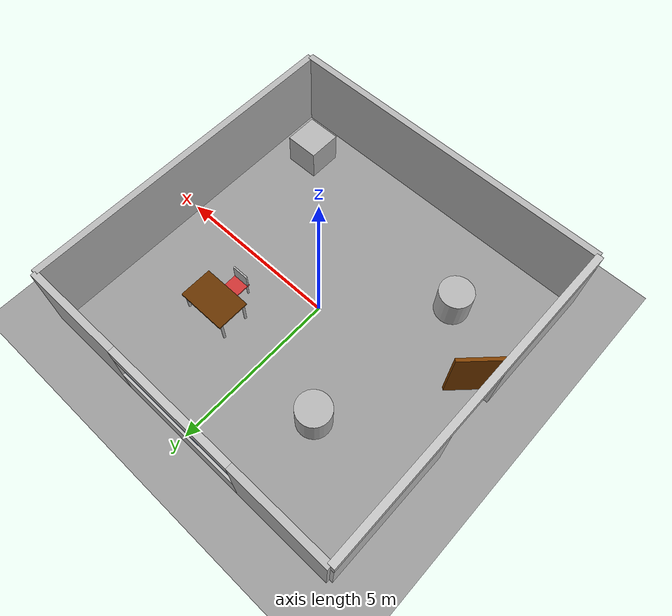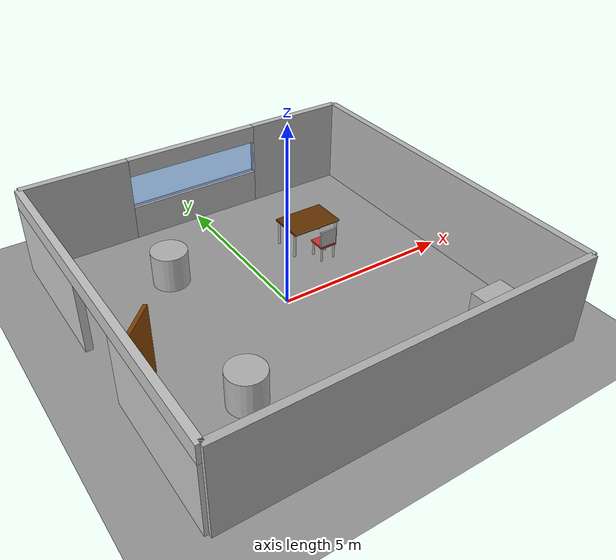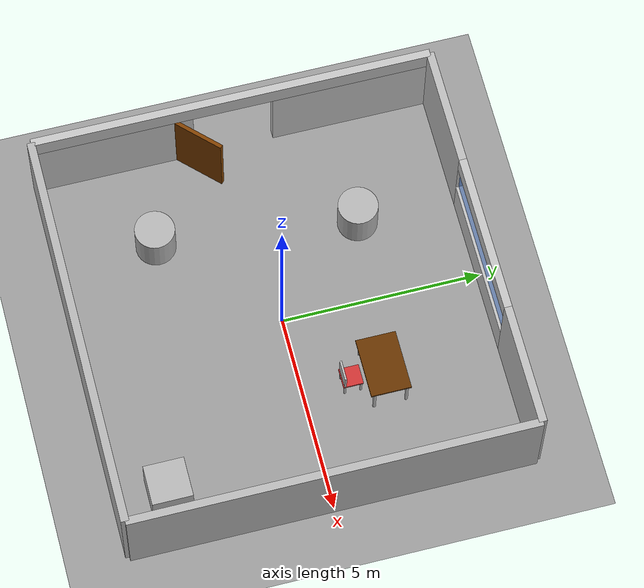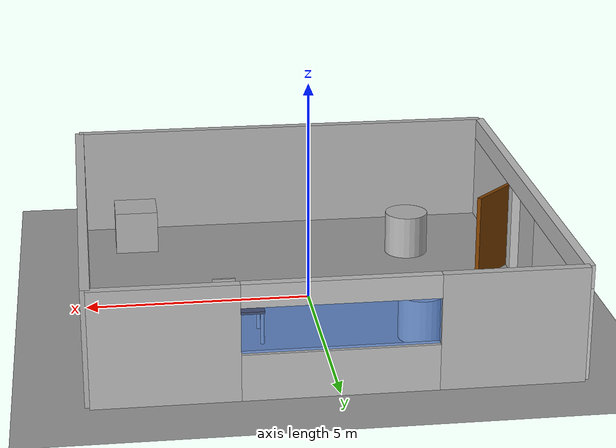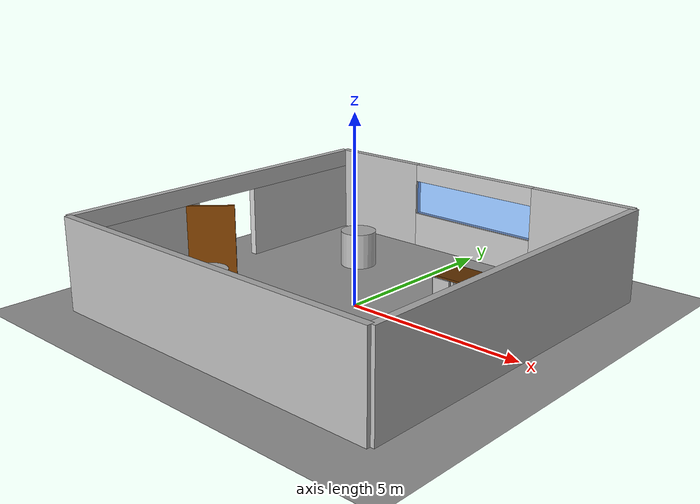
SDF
<sdf version="1.10">
 <world name="my_world">
  <model name="ground_plane">
   <static>true</static>
   <link name="link">
    <collision name="collision">
     <geometry><plane><normal>0 0 1</normal><size>100 100</size></plane></geometry>
    </collision>
    <visual name="visual">
     <geometry><plane><normal>0 0 1</normal><size>100 100</size></plane></geometry>
     <material>
      <ambient>0.600000024 0.600000024 0.600000024 1</ambient>
      <diffuse>0.600000024 0.600000024 0.600000024 1</diffuse>
     </material>
    </visual>
    <inertial>
     <mass>1</mass>
     <inertia><ixx>1</ixx><ixy>0</ixy><ixz>0</ixz><iyy>1</iyy><iyz>0</iyz><izz>1</izz></inertia>
    </inertial>
   </link>
  </model>
  <model name="wall_south">
   <static>true</static>
   <pose>0 -5 1.25 0 0 0</pose>
   <link name="link">
    <collision name="collision">
     <geometry><box><size>10 0.20000000000000001 2.5</size></box></geometry>
    </collision>
    <visual name="visual">
     <geometry><box><size>10 0.20000000000000001 2.5</size></box></geometry>
     <material>
      <ambient>0.699999988 0.699999988 0.699999988 1</ambient>
      <diffuse>0.699999988 0.699999988 0.699999988 1</diffuse>
     </material>
    </visual>
    <inertial>
     <mass>1</mass>
     <inertia><ixx>1</ixx><ixy>0</ixy><ixz>0</ixz><iyy>1</iyy><iyz>0</iyz><izz>1</izz></inertia>
    </inertial>
   </link>
  </model>
  <model name="wall_east">
   <static>true</static>
   <pose>5 0 1.25 0 0 0</pose>
   <link name="link">
    <collision name="collision">
     <geometry><box><size>0.20000000000000001 10 2.5</size></box></geometry>
    </collision>
    <visual name="visual">
     <geometry><box><size>0.20000000000000001 10 2.5</size></box></geometry>
     <material>
      <ambient>0.709999979 0.709999979 0.709999979 1</ambient>
      <diffuse>0.709999979 0.709999979 0.709999979 1</diffuse>
     </material>
    </visual>
    <inertial>
     <mass>1</mass>
     <inertia><ixx>1</ixx><ixy>0</ixy><ixz>0</ixz><iyy>1</iyy><iyz>0</iyz><izz>1</izz></inertia>
    </inertial>
   </link>
  </model>
  <model name="wall_north_window">
   <static>true</static>
   <link name="left_wall">
    <pose>-3.5 5 1.25 0 0 0</pose>
    <collision name="col"><geometry><box><size>3 0.20000000000000001 2.5</size></box></geometry></collision>
    <visual name="vis">
     <geometry><box><size>3 0.20000000000000001 2.5</size></box></geometry>
     <material>
      <ambient>0.720000029 0.720000029 0.720000029 1</ambient>
      <diffuse>0.720000029 0.720000029 0.720000029 1</diffuse>
     </material>
    </visual>
    <inertial>
     <mass>1</mass>
     <inertia><ixx>1</ixx><ixy>0</ixy><ixz>0</ixz><iyy>1</iyy><iyz>0</iyz><izz>1</izz></inertia>
    </inertial>
   </link>
   <link name="right_wall">
    <pose>3.5 5 1.25 0 0 0</pose>
    <collision name="col"><geometry><box><size>3 0.20000000000000001 2.5</size></box></geometry></collision>
    <visual name="vis">
     <geometry><box><size>3 0.20000000000000001 2.5</size></box></geometry>
     <material>
      <ambient>0.730000019 0.730000019 0.730000019 1</ambient>
      <diffuse>0.730000019 0.730000019 0.730000019 1</diffuse>
     </material>
    </visual>
    <inertial>
     <mass>1</mass>
     <inertia><ixx>1</ixx><ixy>0</ixy><ixz>0</ixz><iyy>1</iyy><iyz>0</iyz><izz>1</izz></inertia>
    </inertial>
   </link>
   <link name="bottom_wall">
    <pose>0 5 0.5 0 0 0</pose>
    <collision name="col"><geometry><box><size>4 0.20000000000000001 1</size></box></geometry></collision>
    <visual name="vis">
     <geometry><box><size>4 0.20000000000000001 1</size></box></geometry>
     <material>
      <ambient>0.74000001 0.74000001 0.74000001 1</ambient>
      <diffuse>0.74000001 0.74000001 0.74000001 1</diffuse>
     </material>
    </visual>
    <inertial>
     <mass>1</mass>
     <inertia><ixx>1</ixx><ixy>0</ixy><ixz>0</ixz><iyy>1</iyy><iyz>0</iyz><izz>1</izz></inertia>
    </inertial>
   </link>
   <link name="top_wall">
    <pose>0 5 2.25 0 0 0</pose>
    <collision name="col"><geometry><box><size>4 0.20000000000000001 0.5</size></box></geometry></collision>
    <visual name="vis">
     <geometry><box><size>4 0.20000000000000001 0.5</size></box></geometry>
     <material><ambient>0.75 0.75 0.75 1</ambient><diffuse>0.75 0.75 0.75 1</diffuse></material>
    </visual>
    <inertial>
     <mass>1</mass>
     <inertia><ixx>1</ixx><ixy>0</ixy><ixz>0</ixz><iyy>1</iyy><iyz>0</iyz><izz>1</izz></inertia>
    </inertial>
   </link>
   <link name="glass">
    <pose>0 5 1.5 0 0 0</pose>
    <visual name="vis">
     <geometry><box><size>4 0.050000000000000003 1</size></box></geometry>
     <material><ambient>0.200000003 0.5 1 0.5</ambient><diffuse>0.200000003 0.5 1 0.5</diffuse></material>
    </visual>
    <inertial>
     <mass>1</mass>
     <inertia><ixx>1</ixx><ixy>0</ixy><ixz>0</ixz><iyy>1</iyy><iyz>0</iyz><izz>1</izz></inertia>
    </inertial>
   </link>
  </model>
  <model name="wall_west_door">
   <static>true</static>
   <link name="top_wall">
    <pose>-5 0 2.25 0 0 0</pose>
    <collision name="col"><geometry><box><size>0.20000000000000001 10 0.5</size></box></geometry></collision>
    <visual name="vis">
     <geometry><box><size>0.20000000000000001 10 0.5</size></box></geometry>
     <material>
      <ambient>0.75999999 0.75999999 0.75999999 1</ambient>
      <diffuse>0.75999999 0.75999999 0.75999999 1</diffuse>
     </material>
    </visual>
    <inertial>
     <mass>1</mass>
     <inertia><ixx>1</ixx><ixy>0</ixy><ixz>0</ixz><iyy>1</iyy><iyz>0</iyz><izz>1</izz></inertia>
    </inertial>
   </link>
   <link name="left_wall">
    <pose>-5 -3 1 0 0 0</pose>
    <collision name="col"><geometry><box><size>0.20000000000000001 4 2</size></box></geometry></collision>
    <visual name="vis">
     <geometry><box><size>0.20000000000000001 4 2</size></box></geometry>
     <material>
      <ambient>0.769999981 0.769999981 0.769999981 1</ambient>
      <diffuse>0.769999981 0.769999981 0.769999981 1</diffuse>
     </material>
    </visual>
    <inertial>
     <mass>1</mass>
     <inertia><ixx>1</ixx><ixy>0</ixy><ixz>0</ixz><iyy>1</iyy><iyz>0</iyz><izz>1</izz></inertia>
    </inertial>
   </link>
   <link name="right_wall">
    <pose>-5 3 1 0 0 0</pose>
    <collision name="col"><geometry><box><size>0.20000000000000001 4 2</size></box></geometry></collision>
    <visual name="vis">
     <geometry><box><size>0.20000000000000001 4 2</size></box></geometry>
     <material>
      <ambient>0.779999971 0.779999971 0.779999971 1</ambient>
      <diffuse>0.779999971 0.779999971 0.779999971 1</diffuse>
     </material>
    </visual>
    <inertial>
     <mass>1</mass>
     <inertia><ixx>1</ixx><ixy>0</ixy><ixz>0</ixz><iyy>1</iyy><iyz>0</iyz><izz>1</izz></inertia>
    </inertial>
   </link>
   <link name="door">
    <pose>-4.5 -1 1 0 0 0.78500000000000036</pose>
    <collision name="col">
     <geometry><box><size>1.3999999999999999 0.10000000000000001 2</size></box></geometry>
    </collision>
    <visual name="vis">
     <geometry><box><size>1.3999999999999999 0.10000000000000001 2</size></box></geometry>
     <material><ambient>0.5 0.25 0 1</ambient><diffuse>0.5 0.25 0 1</diffuse></material>
    </visual>
    <inertial>
     <mass>1</mass>
     <inertia><ixx>1</ixx><ixy>0</ixy><ixz>0</ixz><iyy>1</iyy><iyz>0</iyz><izz>1</izz></inertia>
    </inertial>
   </link>
  </model>
  <model name="table">
   <static>true</static>
   <link name="table_top">
    <pose>2 2 0.75 0 0 0</pose>
    <collision name="col"><geometry><box><size>1.5 1 0.050000000000000003</size></box></geometry></collision>
    <visual name="vis">
     <geometry><box><size>1.5 1 0.050000000000000003</size></box></geometry>
     <material>
      <ambient>0.400000006 0.200000003 0 1</ambient>
      <diffuse>0.400000006 0.200000003 0 1</diffuse>
     </material>
    </visual>
    <inertial>
     <mass>1</mass>
     <inertia><ixx>1</ixx><ixy>0</ixy><ixz>0</ixz><iyy>1</iyy><iyz>0</iyz><izz>1</izz></inertia>
    </inertial>
   </link>
   <link name="leg1">
    <pose>1.3 1.6000000000000001 0.375 0 0 0</pose>
    <collision name="col">
     <geometry><cylinder><radius>0.040000000000000001</radius><length>0.75</length></cylinder></geometry>
    </collision>
    <visual name="vis">
     <geometry><cylinder><radius>0.040000000000000001</radius><length>0.75</length></cylinder></geometry>
    </visual>
    <inertial>
     <mass>1</mass>
     <inertia><ixx>1</ixx><ixy>0</ixy><ixz>0</ixz><iyy>1</iyy><iyz>0</iyz><izz>1</izz></inertia>
    </inertial>
   </link>
   <link name="leg2">
    <pose>2.7000000000000002 1.6000000000000001 0.375 0 0 0</pose>
    <collision name="col">
     <geometry><cylinder><radius>0.040000000000000001</radius><length>0.75</length></cylinder></geometry>
    </collision>
    <visual name="vis">
     <geometry><cylinder><radius>0.040000000000000001</radius><length>0.75</length></cylinder></geometry>
    </visual>
    <inertial>
     <mass>1</mass>
     <inertia><ixx>1</ixx><ixy>0</ixy><ixz>0</ixz><iyy>1</iyy><iyz>0</iyz><izz>1</izz></inertia>
    </inertial>
   </link>
   <link name="leg3">
    <pose>1.3 2.3999999999999999 0.375 0 0 0</pose>
    <collision name="col">
     <geometry><cylinder><radius>0.040000000000000001</radius><length>0.75</length></cylinder></geometry>
    </collision>
    <visual name="vis">
     <geometry><cylinder><radius>0.040000000000000001</radius><length>0.75</length></cylinder></geometry>
    </visual>
    <inertial>
     <mass>1</mass>
     <inertia><ixx>1</ixx><ixy>0</ixy><ixz>0</ixz><iyy>1</iyy><iyz>0</iyz><izz>1</izz></inertia>
    </inertial>
   </link>
   <link name="leg4">
    <pose>2.7000000000000002 2.3999999999999999 0.375 0 0 0</pose>
    <collision name="col">
     <geometry><cylinder><radius>0.040000000000000001</radius><length>0.75</length></cylinder></geometry>
    </collision>
    <visual name="vis">
     <geometry><cylinder><radius>0.040000000000000001</radius><length>0.75</length></cylinder></geometry>
    </visual>
    <inertial>
     <mass>1</mass>
     <inertia><ixx>1</ixx><ixy>0</ixy><ixz>0</ixz><iyy>1</iyy><iyz>0</iyz><izz>1</izz></inertia>
    </inertial>
   </link>
  </model>
  <model name="chair">
   <static>true</static>
   <link name="seat">
    <pose>2 1.2 0.45000000000000001 0 0 0</pose>
    <collision name="col"><geometry><box><size>0.5 0.5 0.050000000000000003</size></box></geometry></collision>
    <visual name="vis">
     <geometry><box><size>0.5 0.5 0.050000000000000003</size></box></geometry>
     <material>
      <ambient>0.800000012 0.200000003 0.200000003 1</ambient>
      <diffuse>0.800000012 0.200000003 0.200000003 1</diffuse>
     </material>
    </visual>
    <inertial>
     <mass>1</mass>
     <inertia><ixx>1</ixx><ixy>0</ixy><ixz>0</ixz><iyy>1</iyy><iyz>0</iyz><izz>1</izz></inertia>
    </inertial>
   </link>
   <link name="backrest">
    <pose>2 1 0.69999999999999996 0 0 0</pose>
    <collision name="col"><geometry><box><size>0.5 0.050000000000000003 0.5</size></box></geometry></collision>
    <visual name="vis"><geometry><box><size>0.5 0.050000000000000003 0.5</size></box></geometry></visual>
    <inertial>
     <mass>1</mass>
     <inertia><ixx>1</ixx><ixy>0</ixy><ixz>0</ixz><iyy>1</iyy><iyz>0</iyz><izz>1</izz></inertia>
    </inertial>
   </link>
   <link name="leg1">
    <pose>1.8 1 0.22500000000000001 0 0 0</pose>
    <collision name="col">
     <geometry>
      <cylinder><radius>0.029999999999999999</radius><length>0.45000000000000001</length></cylinder>
     </geometry>
    </collision>
    <visual name="vis">
     <geometry>
      <cylinder><radius>0.029999999999999999</radius><length>0.45000000000000001</length></cylinder>
     </geometry>
    </visual>
    <inertial>
     <mass>1</mass>
     <inertia><ixx>1</ixx><ixy>0</ixy><ixz>0</ixz><iyy>1</iyy><iyz>0</iyz><izz>1</izz></inertia>
    </inertial>
   </link>
   <link name="leg2">
    <pose>2.2000000000000002 1 0.22500000000000001 0 0 0</pose>
    <collision name="col">
     <geometry>
      <cylinder><radius>0.029999999999999999</radius><length>0.45000000000000001</length></cylinder>
     </geometry>
    </collision>
    <visual name="vis">
     <geometry>
      <cylinder><radius>0.029999999999999999</radius><length>0.45000000000000001</length></cylinder>
     </geometry>
    </visual>
    <inertial>
     <mass>1</mass>
     <inertia><ixx>1</ixx><ixy>0</ixy><ixz>0</ixz><iyy>1</iyy><iyz>0</iyz><izz>1</izz></inertia>
    </inertial>
   </link>
   <link name="leg3">
    <pose>1.8 1.3999999999999999 0.22500000000000001 0 0 0</pose>
    <collision name="col">
     <geometry>
      <cylinder><radius>0.029999999999999999</radius><length>0.45000000000000001</length></cylinder>
     </geometry>
    </collision>
    <visual name="vis">
     <geometry>
      <cylinder><radius>0.029999999999999999</radius><length>0.45000000000000001</length></cylinder>
     </geometry>
    </visual>
    <inertial>
     <mass>1</mass>
     <inertia><ixx>1</ixx><ixy>0</ixy><ixz>0</ixz><iyy>1</iyy><iyz>0</iyz><izz>1</izz></inertia>
    </inertial>
   </link>
   <link name="leg4">
    <pose>2.2000000000000002 1.3999999999999999 0.22500000000000001 0 0 0</pose>
    <collision name="col">
     <geometry>
      <cylinder><radius>0.029999999999999999</radius><length>0.45000000000000001</length></cylinder>
     </geometry>
    </collision>
    <visual name="vis">
     <geometry>
      <cylinder><radius>0.029999999999999999</radius><length>0.45000000000000001</length></cylinder>
     </geometry>
    </visual>
    <inertial>
     <mass>1</mass>
     <inertia><ixx>1</ixx><ixy>0</ixy><ixz>0</ixz><iyy>1</iyy><iyz>0</iyz><izz>1</izz></inertia>
    </inertial>
   </link>
  </model>
  <model name="box">
   <pose>3.7273592793830908 -3.7265108825268358 0.49999999990199806 6.2287739151293738e-22 9.3279666454713669e-22 -3.6315533669320137e-22</pose>
   <link name="box_link">
    <inertial>
     <inertia><ixx>0.16666</ixx><ixy>0</ixy><ixz>0</ixz><iyy>0.16666</iyy><iyz>0</iyz><izz>0.16666</izz></inertia>
     <mass>1</mass>
    </inertial>
    <collision name="box_collision"><geometry><box><size>1 1 1</size></box></geometry></collision>
    <visual name="box_visual">
     <geometry><box><size>1 1 1</size></box></geometry>
     <material>
      <ambient>0.300000012 0.300000012 0.300000012 1</ambient>
      <diffuse>0.699999988 0.699999988 0.699999988 1</diffuse>
      <specular>1 1 1 1</specular>
     </material>
    </visual>
   </link>
   <static>false</static>
  </model>
  <model name="cylinder">
   <pose>-2.1162201882442115 2.4524776084226878 0.49999942638036005 4.3291580458062605e-19 2.5915978121226725e-19 8.6248087190098812e-21</pose>
   <link name="cylinder_link">
    <inertial>
     <inertia>
      <ixx>0.14580000000000001</ixx>
      <ixy>0</ixy>
      <ixz>0</ixz>
      <iyy>0.14580000000000001</iyy>
      <iyz>0</iyz>
      <izz>0.125</izz>
     </inertia>
     <mass>1</mass>
    </inertial>
    <collision name="cylinder_collision">
     <geometry><cylinder><radius>0.5</radius><length>1</length></cylinder></geometry>
    </collision>
    <visual name="cylinder_visual">
     <geometry><cylinder><radius>0.5</radius><length>1</length></cylinder></geometry>
     <material>
      <ambient>0.300000012 0.300000012 0.300000012 1</ambient>
      <diffuse>0.699999988 0.699999988 0.699999988 1</diffuse>
      <specular>1 1 1 1</specular>
     </material>
    </visual>
   </link>
   <static>false</static>
  </model>
  <model name="cylinder_0">
   <pose>-2.7050481072900445 -2.5240424828229782 0.49999942638036005 1.3888181694889743e-19 2.7621602077922464e-19 -7.434725195246963e-21</pose>
   <link name="cylinder_link">
    <inertial>
     <inertia>
      <ixx>0.14580000000000001</ixx>
      <ixy>0</ixy>
      <ixz>0</ixz>
      <iyy>0.14580000000000001</iyy>
      <iyz>0</iyz>
      <izz>0.125</izz>
     </inertia>
     <mass>1</mass>
    </inertial>
    <collision name="cylinder_collision">
     <geometry><cylinder><radius>0.5</radius><length>1</length></cylinder></geometry>
    </collision>
    <visual name="cylinder_visual">
     <geometry><cylinder><radius>0.5</radius><length>1</length></cylinder></geometry>
     <material>
      <ambient>0.300000012 0.300000012 0.300000012 1</ambient>
      <diffuse>0.699999988 0.699999988 0.699999988 1</diffuse>
      <specular>1 1 1 1</specular>
     </material>
    </visual>
   </link>
   <static>false</static>
  </model>
 </world>
</sdf>
